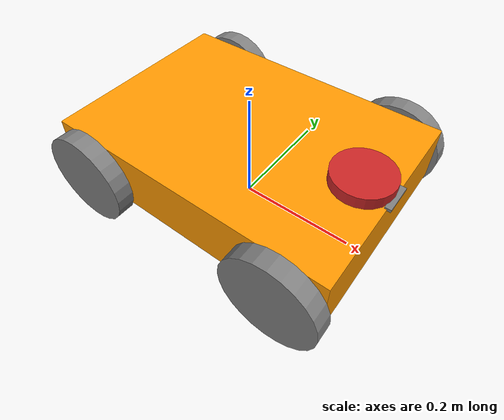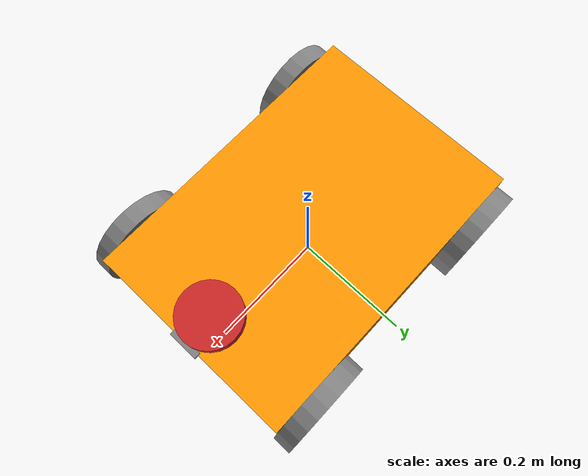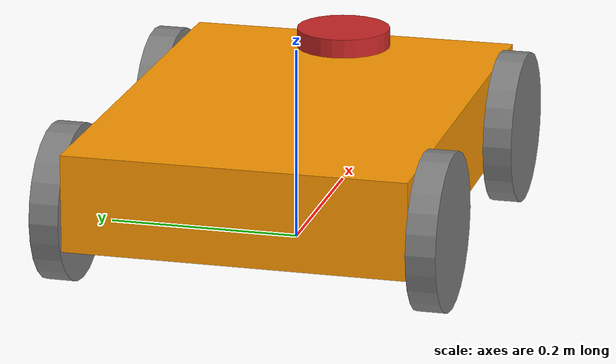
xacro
<?xml version="1.0"?>
<robot name="my_robot" xmlns:xacro ="http://www.ros.org/wiki/xacro" >

     <xacro:include filename="common_properties.xacro"/>
     <xacro:include filename="robot_base.xacro"/>
     <xacro:include filename="robot_base_gazebo.xacro"/>
     <xacro:include filename="camera.xacro"/>
     <xacro:include filename="lidar.xacro"/>

</robot>

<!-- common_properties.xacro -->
<robot xmlns:xacro ="http://www.ros.org/wiki/xacro">

    <material name="orange">
        <color rgba="1 0.6 0 1" />
    </material>

    <material name="gray">
        <color rgba="0.5 0.5 0.5 1"/>
    </material>

    <xacro:macro name="box_inertia" params="m l w h xyz rpy">
        <inertial>
            <origin xyz="${xyz}" rpy="${rpy}" />
            <mass value="${m}"/>
            <inertia ixx="${(m/12) * (h*h + l*l)}" ixy="0" ixz="0"
                     iyy="${(m/12) * (w*w + l*l)}" iyz="0"
                     izz="${(m/12) * (w*w + h*h)}"/>
        </inertial>
    </xacro:macro>

    <xacro:macro name="wheel_inertia" params="m r h xyz rpy">
        <inertial>
            <origin xyz="${xyz}" rpy="${rpy}"/>
            <mass value="${m}"/>
            <inertia ixx="${(m/12) * (3*r*r + h*h)}" ixy="0" ixz="0"
                     iyy="${(m/12) * (3*r*r + h*h)}" iyz="0"
                     izz="${(m/2) * (r*r)}"/>
        </inertial>
    </xacro:macro>

</robot>

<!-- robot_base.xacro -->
<robot xmlns:xacro ="http://www.ros.org/wiki/xacro">

     <!-- Robot Properties -->

    <xacro:property name="base_length" value="0.5"/>  lenght of base divided by 10
    <xacro:property name="base_width" value="0.35"/> width of base divided by 10
    <xacro:property name="base_height" value="0.1"/>  height of base  divided by 10
    <xacro:property name="radius_wheels" value="0.08"/>
    <xacro:property name="thick_wheels" value="0.03"/>
    <xacro:property name="wheel_joint_hieght" value="0.03"/>

    <!-- Base Footprint -->
    <link name="base_footprint"/>

      <!-- Base Link -->
    <link name="base_link">
        <visual>
            <geometry>
                <box size="${base_length} ${base_width} ${base_height}"></box>
            </geometry>
            <material name="orange"/>
            <origin xyz="0 0 ${base_height/2.0}" rpy="0 0 0" />
        </visual>
        <collision>
            <geometry>
                <box size="${base_length} ${base_width} ${base_height}"></box>
            </geometry>
            <material name="orange"/>
            <origin xyz="0 0 ${base_height/2.0}" rpy="0 0 0" />
        </collision>
        <xacro:box_inertia m="5.0" l="${base_length}" w="${base_width}" h="${base_height}"
                            xyz="0 0 ${base_height/2.0}" rpy="0 0 0"/>
    </link>

    <!-- Wheel Macro -->
    <xacro:macro name="wheel_link" params="prefix">
        <link name="${prefix}_wheel_link">
            <visual>
                <geometry>
                    <cylinder radius="${radius_wheels}" length="${thick_wheels}" />
                </geometry>
                <origin xyz="0 0 0" rpy="${pi/2.0} 0 0"/>  rotat wheel 180 degree about X axis
                <material name="gray"/>
            </visual>
            <collision>
                <geometry>
                    <cylinder radius="${radius_wheels}" length="${thick_wheels}" />
                </geometry>
                <origin xyz="0 0 0" rpy="${pi/2.0} 0 0"/>  rotat wheel 180 degree about X axis
            </collision>
            <xacro:wheel_inertia m="0.5" r="${radius_wheels}" h="${thick_wheels}"
                                 xyz="0 0 0" rpy="${pi/2.0} 0 0"/>
        </link>
    </xacro:macro>

    <!-- Wheel Links -->
    <xacro:wheel_link prefix="right_r"/>
    <xacro:wheel_link prefix="right_f"/>
    <xacro:wheel_link prefix="left_r"/>
    <xacro:wheel_link prefix="left_f"/>

    <!-- Fixed Joint for Base -->
    <joint name="base_joint" type="fixed">
        <parent link="base_footprint"/>
        <child link="base_link"/>
        <origin xyz="0 0 0.05" rpy="0 0 0"/>  0.05 diffrent  between
    </joint>

    <!-- Continuous Joints for Wheels -->

    <!-- Rear Right Wheel -->
    <joint name="base_right_wheel_r_joint" type="continuous">
        <parent link="base_link"/>
        <child link ="right_r_wheel_link"/>
        <origin xyz="-0.18 -0.19 ${wheel_joint_hieght}" rpy="0 0 0"/> ///distance between center and wheel
        <axis xyz="0 1 0"/>
    </joint>

<!-- Front Right Wheel -->
    <joint name="base_right_wheel_f_joint" type="continuous">
        <parent link="base_link"/>
        <child link="right_f_wheel_link"/>
        <origin xyz="0.18 -0.19 ${wheel_joint_hieght}" rpy="0 0 0"/>
        <axis xyz="0 1 0"/>
    </joint>

<!-- Rear Left Wheel -->
    <joint name="base_left_wheel_r_joint" type="continuous">
        <parent link="base_link"/>
        <child link="left_r_wheel_link"/>
        <origin xyz="-0.18 0.19 ${wheel_joint_hieght}" rpy="0 0 0"/>
        <axis xyz="0 1 0"/>
    </joint>

<!-- Front Left Wheel -->
    <joint name="base_left_wheel_f_joint" type="continuous">
        <parent link="base_link"/>
        <child link="left_f_wheel_link"/>
        <origin xyz="0.18 0.19 ${wheel_joint_hieght}" rpy="0 0 0"/>
        <axis xyz="0 1 0"/>
    </joint>

</robot>

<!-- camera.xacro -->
<robot xmlns:xacro ="http://www.ros.org/wiki/xacro">

    <xacro:property name="camera_length" value="0.01"/>
    <xacro:property name="camera_width" value="0.05"/>
    <xacro:property name="camera_height" value="0.005"/>

    <link name="camera_link">
        <visual>
            <geometry>
                <box size="${camera_length} ${camera_width} ${camera_height}"/>
            </geometry>
            <material name="gray"/>
        </visual>
        <collision>
            <geometry>
                <box size="${camera_length} ${camera_width} ${camera_height}"/>
            </geometry>
        </collision>
        <xacro:box_inertia m="0.1" l="${camera_length}" w="${camera_width}" h="${camera_height}"
                            xyz="0 0 0" rpy="0 0 0"/>
    </link>

    <joint name="base_camera_joint" type="fixed">
        <parent link="base_link"/>
        <child link="camera_link"/>
        <origin xyz="0.251 0 0.1" rpy="0 0 0"/>
    </joint>

    <link name="camera_link_optical">
    </link>

    <joint name="camera_optical_joint" type="fixed">
        <!-- these values have to be these values otherwise the gazebo camera
            image won't be aligned properly with the frame it is supposedly
            originating from -->
        <origin xyz="0 0 0" rpy="${-pi/2} 0 ${-pi/2}"/>
        <parent link="camera_link"/>
        <child link="camera_link_optical"/>
    </joint>

    <gazebo reference="camera_link">
        <material>Gazebo/Red</material>
        <sensor name="camera_sensor" type="depth">
            <pose>0 0 0 0 0 0 </pose>
            <visualize>true</visualize>
            <update_rate>10.0 </update_rate>
            <camera>
                <horizontal_fov>1.0472</horizontal_fov> <!-- 60 degrees in radians -->
                <image>
                    <width>640</width>
                    <height>480</height>
                    <format>R8G8B8</format>
                </image>
                <clip>
                    <near>0.1</near>
                    <far>10.0</far>
                </clip>
            </camera>
            <plugin name="camera_controller" filename="libgazebo_ros_camera.so">
                <frame_name>camera_link_optical</frame_name>
                <min_depth>0.1</min_depth>
                <max_depth>10</max_depth>

            </plugin>
        </sensor>
    </gazebo>

</robot>

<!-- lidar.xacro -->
<robot xmlns:xacro="http://www.ros.org/wiki/xacro">

    <!-- LiDAR Properties -->
    <xacro:property name="lidar_radius" value="0.05"/>
    <xacro:property name="lidar_height" value="0.02"/>

    <!-- LiDAR Link -->
    <link name="lidar_link">
        <visual>
            <geometry>
                <cylinder radius="${lidar_radius}" length="${lidar_height}"/>
            </geometry>
            <material name="red"/>
        </visual>
        <collision>
            <geometry>
                <cylinder radius="${lidar_radius}" length="${lidar_height}"/>
            </geometry>
        </collision>
        <xacro:wheel_inertia m="0.2" r="${lidar_radius}" h="${lidar_height}"
                         xyz="0 0 0" rpy="0 0 0"/>
    </link>

    <!-- LiDAR Joint -->
    <joint name="base_lidar_joint" type="fixed">
        <parent link="base_link"/>
        <child link="lidar_link"/>
        <origin xyz="0.2 0 0.11" rpy="0 0 0"/> <!-- Adjust position -->
    </joint>

    <!-- Gazebo Plugin for LiDAR -->
    <gazebo reference="lidar_link">
        <material>Gazebo/Black</material>

        <sensor name="lidar_sensor" type="ray">
            <pose>0 0 0 0 0 0</pose>
            <visualize>true</visualize>
            <update_rate>10.0</update_rate>
            <ray>
                <scan>
                    <horizontal>
                        <samples>360</samples>
                        <resolution>1</resolution>
                        <min_angle>-3.14</min_angle>
                        <max_angle>3.14</max_angle>
                    </horizontal>
                </scan>
                <range>
                    <min>0.1</min>
                    <max>10.0</max>
                </range>
            </ray>
            <plugin name="laser_controller" filename="libgazebo_ros_ray_sensor.so">
                <ros>
                    <argument>~/out:=scan</argument>
                </ros>
                <output_type>sensor_msgs/LaserScan</output_type>
                <frame_name>laser_frame</frame_name>
            </plugin>
        </sensor>
    </gazebo>

</robot>
